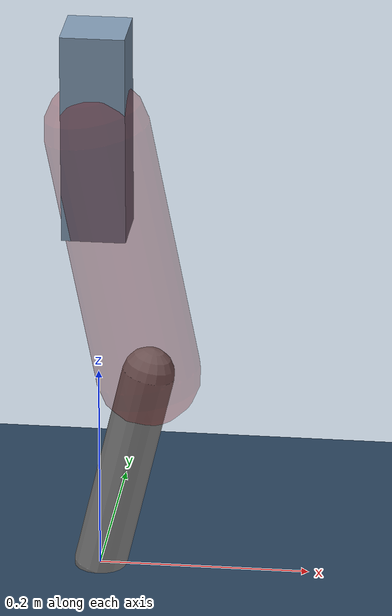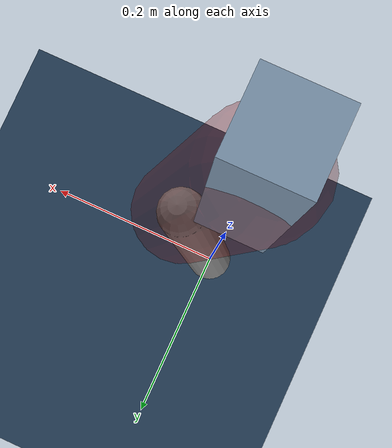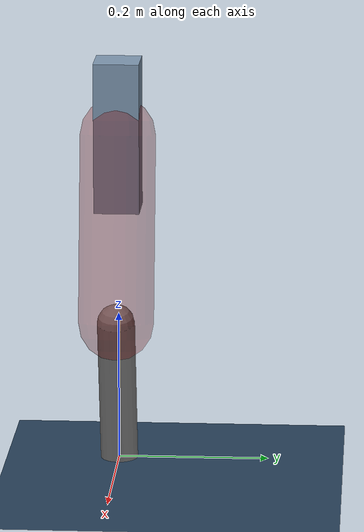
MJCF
<mujoco model="Hopper2D">
	<compiler inertiafromgeom="true" angle="radian" />
	<option timestep="0.001" integrator="implicit" cone="elliptic" solver="Newton" tolerance="1e-10" />

	<default>
		<geom contype="1" conaffinity="1" condim="3" friction="2 0.005 0.0001" solref="0.005 1" />
		<joint limited="true" damping="0.1" />
	</default>

	<asset>
		<texture name="skybox" type="skybox" builtin="gradient" rgb1=".4 .6 .8" rgb2="0 0 0" width="800" height="800" />
		<texture name="grid" type="2d" builtin="checker" rgb1=".1 .2 .3" rgb2=".2 .3 .4" width="300" height="300" mark="edge" markrgb=".2 .3 .4" />
		<material name="ground" texture="grid" texrepeat="1 1" texuniform="true" reflectance="0.1" />
		<material name="leg" rgba="0.5 0.6 0.7 1" />
	</asset>

	<worldbody>

		<geom name="floor" type="plane" size="5 5 0.25" material="ground" />

		<light directional="false" diffuse="0.8 0.8 0.8" specular="0.3 0.3 0.3" pos="0 0 2" dir="0 0 -1" />
		<light mode="targetbodycom" target="base" directional="false" diffuse="0.8 0.8 0.8" specular="0.3 0.3 0.3" pos="0 0 2" dir="0 0 -1" />

		<camera name="fixed" pos="0 -2 1" xyaxes="1 0 0 0 0 1" />
		<camera name="tracking" mode="trackcom" pos="0 -3 1" />

		<body name="root" pos="0 0 0.4438635462770701">
			<joint name="slide_x" type="slide" axis="1 0 0" range="-100 100" />
			<joint name="slide_z" type="slide" axis="0 0 1" range="0 10" />

			<body name="base" pos="0 0 0">
				<geom name="torso" type="box" size="0.03 0.03 0.1" mass="3.0700000000000003" material="leg" />

				<body name="link1" pos="0 0 0" euler="0 1.3797334822908711 0">
					<joint type="hinge" axis="0 -1 0" pos="0 0 0" name="hinge1" limited="true" range="-3.14 3.14" stiffness="0" damping="0.1" />
					<geom name="thigh" type="capsule" fromto="0 0 0 0.24830635636855658 0 0" size="0.05" rgba="0.5 0 0 0.3" mass="0.8519965265582471" />

					<body name="link2" pos="0.24830635636855658 0 0" euler="0 0.42251994475529975 0">
						<joint type="hinge" axis="0 -1 0" pos="0 0 0" name="hinge2" limited="true" range="-3.14 3.14" stiffness="0" damping="0.1" />
						<geom name="shank" type="capsule" fromto="0 0 0 0.20555718990851352 0 0" size="0.025" mass="0.4055457519268108" />

					</body>
				</body>
			</body>
		</body>
	</worldbody>

	<actuator>
		<motor name="torque1" joint="hinge1" ctrlrange="-77.14928574262056 77.14928574262056" ctrllimited="true" gear="1" />
		<motor name="torque2" joint="hinge2" ctrlrange="-119.52069648421828 119.52069648421828" ctrllimited="true" gear="1" />
	</actuator>
</mujoco>
